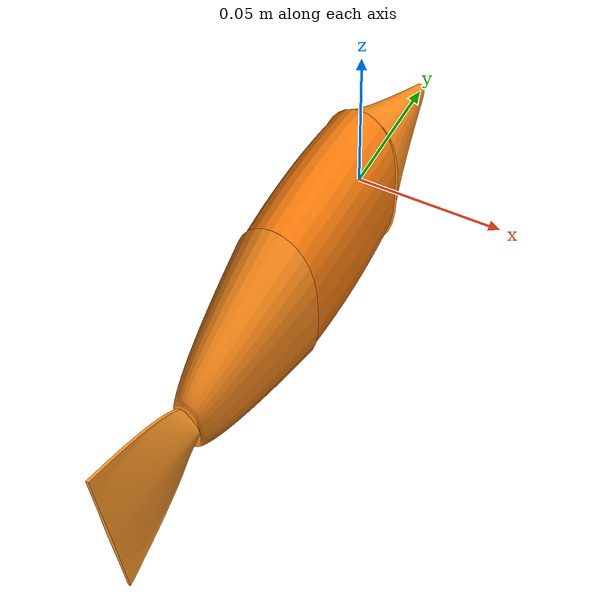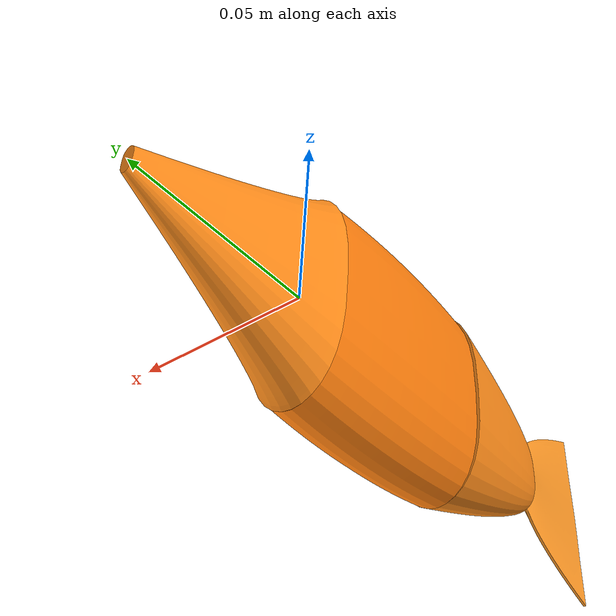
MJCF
<mujoco model="Clownfish3D_Swimmer">

    <compiler angle="degree" inertiafromgeom="true" meshdir="meshes/"/>
    <option timestep="0.01" gravity="0 0 0" integrator="RK4"/>

    <default>
        <joint damping="0.50" stiffness="0" armature="0.10"/>
        <motor ctrlrange="-1 1" ctrllimited="true"/>
        <geom solref="0.002 1" solimp="0.9 0.95 0.001"/>
    </default>

    <asset>
        <!-- Materials: orange clownfish coloring -->
        <material name="head_mat"     rgba="1.00 0.55 0.10 1"/>
        <material name="body_mat"     rgba="1.00 0.50 0.05 1"/>
        <material name="peduncle_mat" rgba="1.00 0.55 0.10 1"/>
        <material name="caudal_mat"   rgba="1.00 0.60 0.15 1"/>

        <!-- Meshes (scale 2x) -->
        <mesh name="head_mesh"     file="clownfish_head.stl"     scale="2 2 2"/>
        <mesh name="body_mesh"     file="clownfish_body.stl"     scale="2 2 2"/>
        <mesh name="peduncle_mesh" file="clownfish_peduncle.stl" scale="2 2 2"/>
        <mesh name="caudal_mesh"   file="clownfish_caudal.stl"   scale="2 2 2"/>
    </asset>

    <worldbody>
        <!-- ============ HEAD (root body with freejoint) ============ -->
        <!-- Head mesh: Y [0, 0.025], origin at rear (Y=0) -->
        <body name="head" pos="0 0 0">
            <freejoint name="root_joint"/>

            <geom name="head_geom" type="mesh" mesh="head_mesh"
                  material="head_mat" density="3500"/>

            <!-- ============ BODY ============ -->
            <!-- Body mesh: Y [-0.014, 0.014] at 1x, scaled 2x → [-0.028, 0.028]
                 body front(+0.028) aligns with head rear(Y=0) → pos_y = -0.028 -->
            <body name="body" pos="0 -0.028 0">
                <joint name="body_yaw" type="hinge" axis="0 0 1"
                       pos="0 0.028 0" limited="true" range="-25 25"/>
                <joint name="body_pitch" type="hinge" axis="1 0 0"
                       pos="0 0.028 0" limited="true" range="-30 30"/>

                <geom name="body_geom" type="mesh" mesh="body_mesh"
                      material="body_mat" density="4000"/>

                <!-- ============ TAIL PEDUNCLE ============ -->
                <!-- Peduncle mesh: Y [-0.025, 0] at 1x, scaled 2x → [-0.050, 0]
                     peduncle front(Y=0) aligns with body rear(Y=-0.028) → pos_y = -0.028 -->
                <body name="peduncle" pos="0 -0.028 0">
                    <joint name="peduncle_yaw" type="hinge" axis="0 0 1"
                           limited="true" range="-35 35"/>
                    <joint name="peduncle_pitch" type="hinge" axis="1 0 0"
                           limited="true" range="-25 25"/>

                    <geom name="peduncle_geom" type="mesh" mesh="peduncle_mesh"
                          material="peduncle_mat" density="3000"/>

                    <!-- ============ CAUDAL FIN ============ -->
                    <!-- Caudal mesh: Y [-0.018, 0] at 1x, scaled 2x → [-0.036, 0]
                         caudal front(Y=0) aligns with peduncle rear(Y=-0.050) → pos_y = -0.050 -->
                    <body name="caudal" pos="0 -0.050 0">
                        <joint name="caudal_rotate" type="hinge" axis="0 1 0"
                               limited="true" range="-30 30"/>
                        <joint name="caudal_yaw" type="hinge" axis="0 0 1"
                               limited="true" range="-45 45"/>
                        <joint name="caudal_pitch" type="hinge" axis="1 0 0"
                               limited="true" range="-30 30"/>

                        <geom name="caudal_geom" type="mesh" mesh="caudal_mesh"
                              material="caudal_mat" density="2000"/>
                    </body>
                </body>
            </body>
        </body>

        <light directional="true" diffuse="0.9 0.9 0.9" pos="0 0 3" dir="0 0 -1"/>
    </worldbody>

    <actuator>

        <!-- Body joint: stiff, small range -->
        <position name="pos_body_yaw"   joint="body_yaw"   kp="1.8" kv="0.25"
                  ctrlrange="-0.436 0.436" forcerange="-1.2 1.2"/>
        <position name="pos_body_pitch" joint="body_pitch" kp="1.6" kv="0.22"
                  ctrlrange="-0.524 0.524" forcerange="-0.9 0.9"/>

        <!-- Peduncle joint: medium -->
        <position name="pos_peduncle_yaw"   joint="peduncle_yaw"   kp="1.5" kv="0.22"
                  ctrlrange="-0.611 0.611" forcerange="-1.0 1.0"/>
        <position name="pos_peduncle_pitch" joint="peduncle_pitch" kp="1.4" kv="0.20"
                  ctrlrange="-0.436 0.436" forcerange="-0.8 0.8"/>

        <!-- Caudal fin: flexible, with rotation -->
        <position name="pos_caudal_rotate" joint="caudal_rotate" kp="0.7" kv="0.12"
                  ctrlrange="-0.524 0.524" forcerange="-0.4 0.4"/>
        <position name="pos_caudal_yaw"   joint="caudal_yaw"   kp="0.9" kv="0.15"
                  ctrlrange="-0.785 0.785" forcerange="-0.6 0.6"/>
        <position name="pos_caudal_pitch" joint="caudal_pitch" kp="0.9" kv="0.15"
                  ctrlrange="-0.524 0.524" forcerange="-0.6 0.6"/>
    </actuator>
</mujoco>
